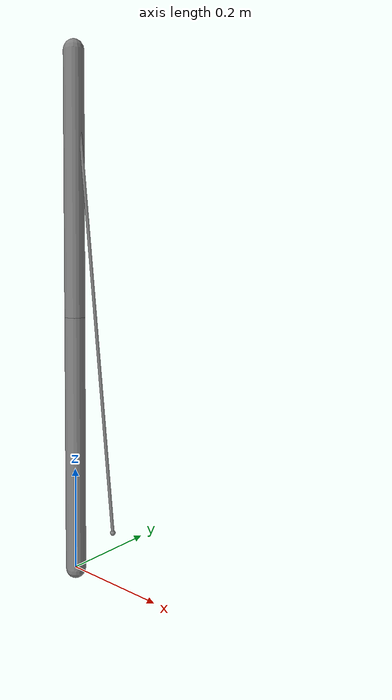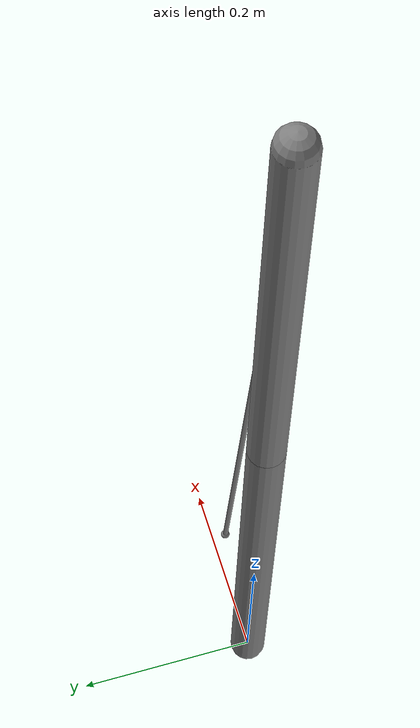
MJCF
<mujoco model="derivation">
  <worldbody>
    <body name="a" pos="0 0 1">
      <joint name="locked" type="hinge" axis="0 1 0" limited="true" range="0 0"/>
      <geom type="capsule" fromto="0 0 0 0 0 -0.5" size="0.02" mass="1"/>
      <site name="s0"/>
      <body name="b" pos="0 0 -0.5">
        <joint name="swing" type="hinge" axis="0 1 0"/>
        <geom type="capsule" fromto="0 0 0 0 0 -0.5" size="0.02" mass="1"/>
        <site name="s1" pos="0.1 0 -0.4"/>
      </body>
    </body>
  </worldbody>
  <tendon>
    <spatial name="t">
      <site site="s0"/>
      <site site="s1"/>
    </spatial>
  </tendon>
  <actuator>
    <muscle name="m" tendon="t"/>
  </actuator>
</mujoco>
